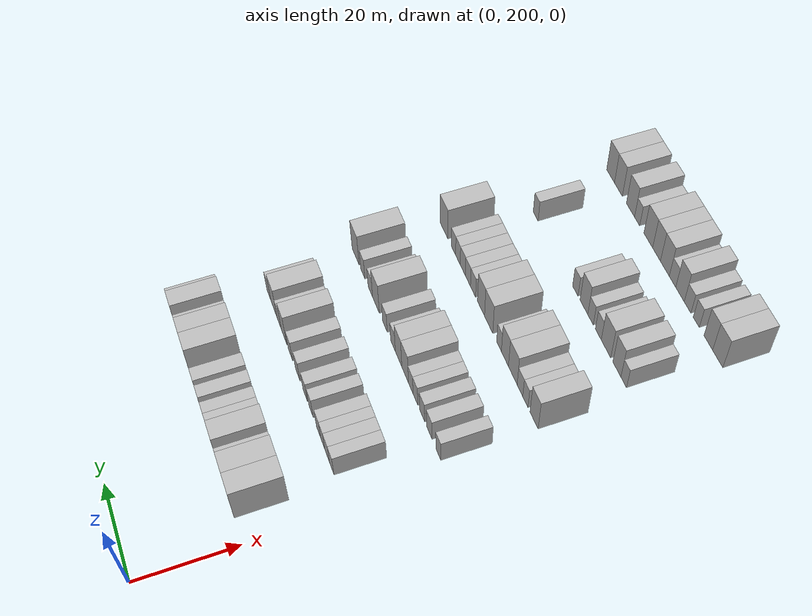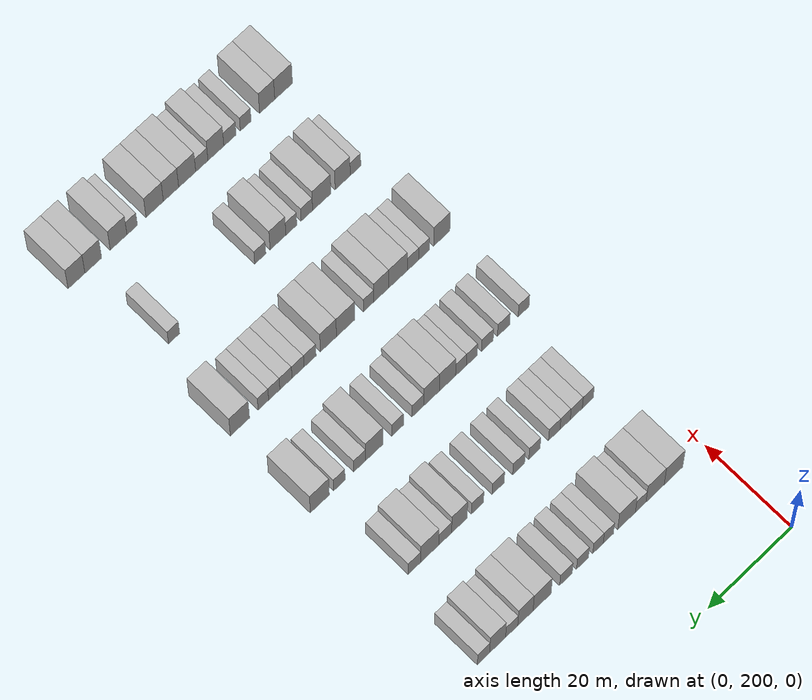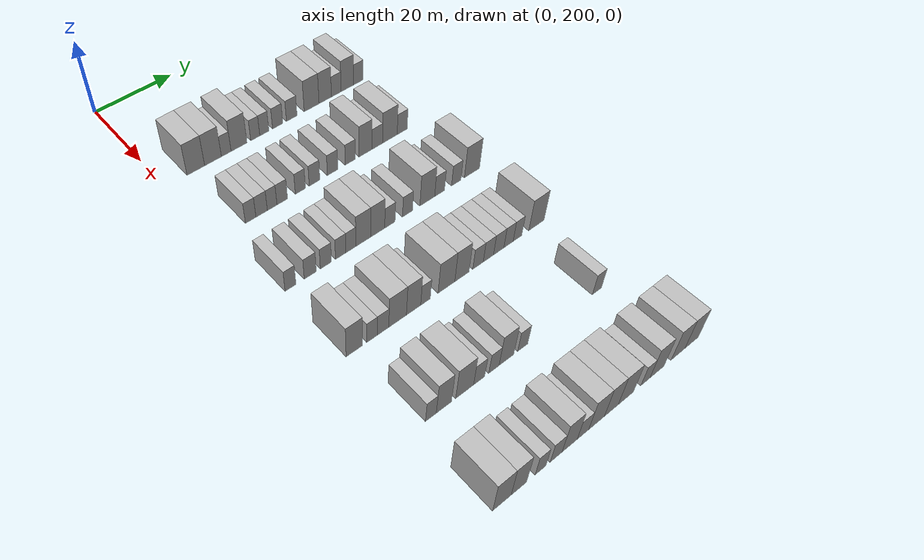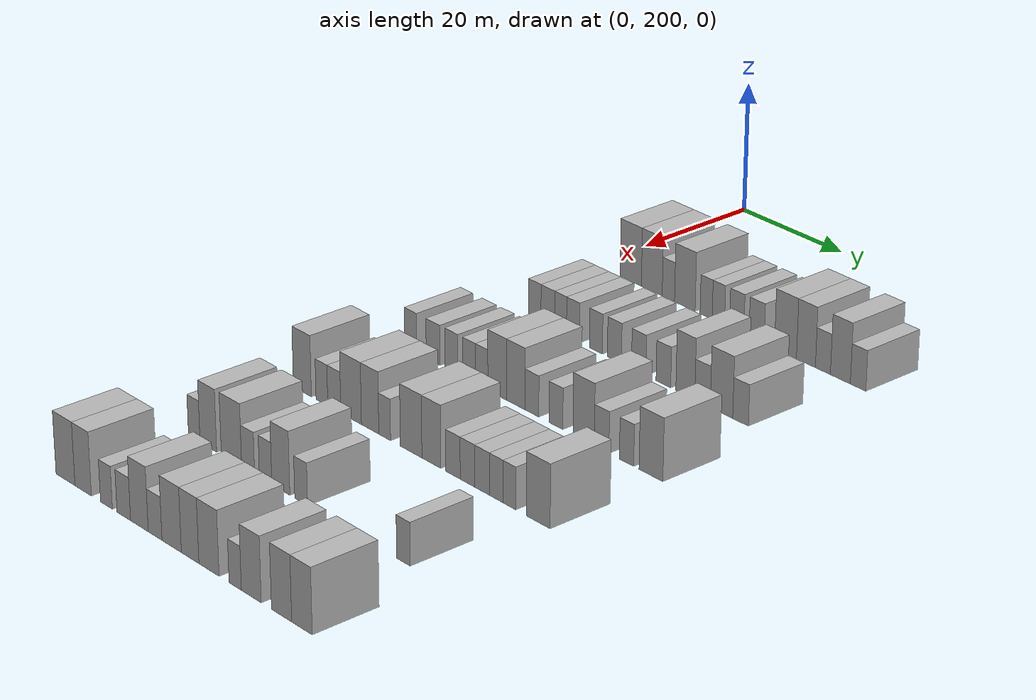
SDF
<sdf version="1.6">
 <world name="default">
  <model name="building_121">
   <static>1</static>
   <pose>25.0000 207.6409 0 0.000000 0.000000 0.000000</pose>
   <link name="link">
    <pose>0 0 4.50 0 0 0</pose>
    <collision name="collision"><geometry><box><size>10.0000 4.4596 9.0000</size></box></geometry></collision>
    <visual name="visual">
     <cast_shadows>0</cast_shadows>
     <geometry><box><size>10.0000 4.4596 9.0000</size></box></geometry>
     <material>
      <script>
       <uri>model://HANNAS_wall/materials/scripts</uri>
       <uri>model://HANNAS_wall/materials/textures</uri>
       <name>vrc/HANNAS_wall</name>
      </script>
     </material>
    </visual>
   </link>
  </model>
  <model name="building_122">
   <static>1</static>
   <pose>25.0000 212.0329 0 0.000000 0.000000 0.000000</pose>
   <link name="link">
    <pose>0 0 4.50 0 0 0</pose>
    <collision name="collision"><geometry><box><size>10.0000 4.3245 9.0000</size></box></geometry></collision>
    <visual name="visual">
     <cast_shadows>0</cast_shadows>
     <geometry><box><size>10.0000 4.3245 9.0000</size></box></geometry>
     <material>
      <script>
       <uri>model://HANNAS_wall/materials/scripts</uri>
       <uri>model://HANNAS_wall/materials/textures</uri>
       <name>vrc/HANNAS_wall</name>
      </script>
     </material>
    </visual>
   </link>
  </model>
  <model name="building_123">
   <static>1</static>
   <pose>25.0000 215.4562 0 0.000000 0.000000 0.000000</pose>
   <link name="link">
    <pose>0 0 3.00 0 0 0</pose>
    <collision name="collision"><geometry><box><size>10.0000 2.5221 6.0000</size></box></geometry></collision>
    <visual name="visual">
     <cast_shadows>0</cast_shadows>
     <geometry><box><size>10.0000 2.5221 6.0000</size></box></geometry>
     <material>
      <script>
       <uri>model://HANNAS_wall/materials/scripts</uri>
       <uri>model://HANNAS_wall/materials/textures</uri>
       <name>vrc/HANNAS_wall</name>
      </script>
     </material>
    </visual>
   </link>
  </model>
  <model name="building_124">
   <static>1</static>
   <pose>25.0000 218.8134 0 0.000000 0.000000 0.000000</pose>
   <link name="link">
    <pose>0 0 4.50 0 0 0</pose>
    <collision name="collision"><geometry><box><size>10.0000 4.1922 9.0000</size></box></geometry></collision>
    <visual name="visual">
     <cast_shadows>0</cast_shadows>
     <geometry><box><size>10.0000 4.1922 9.0000</size></box></geometry>
     <material>
      <script>
       <uri>model://HANNAS_wall/materials/scripts</uri>
       <uri>model://HANNAS_wall/materials/textures</uri>
       <name>vrc/HANNAS_wall</name>
      </script>
     </material>
    </visual>
   </link>
  </model>
  <model name="building_125">
   <static>1</static>
   <pose>25.0000 223.1245 0 0.000000 0.000000 0.000000</pose>
   <link name="link">
    <pose>0 0 3.00 0 0 0</pose>
    <collision name="collision"><geometry><box><size>10.0000 2.4300 6.0000</size></box></geometry></collision>
    <visual name="visual">
     <cast_shadows>0</cast_shadows>
     <geometry><box><size>10.0000 2.4300 6.0000</size></box></geometry>
     <material>
      <script>
       <uri>model://HANNAS_wall/materials/scripts</uri>
       <uri>model://HANNAS_wall/materials/textures</uri>
       <name>vrc/HANNAS_wall</name>
      </script>
     </material>
    </visual>
   </link>
  </model>
  <model name="building_126">
   <static>1</static>
   <pose>25.0000 225.5760 0 0.000000 0.000000 0.000000</pose>
   <link name="link">
    <pose>0 0 3.00 0 0 0</pose>
    <collision name="collision"><geometry><box><size>10.0000 2.4731 6.0000</size></box></geometry></collision>
    <visual name="visual">
     <cast_shadows>0</cast_shadows>
     <geometry><box><size>10.0000 2.4731 6.0000</size></box></geometry>
     <material>
      <script>
       <uri>model://HANNAS_wall/materials/scripts</uri>
       <uri>model://HANNAS_wall/materials/textures</uri>
       <name>vrc/HANNAS_wall</name>
      </script>
     </material>
    </visual>
   </link>
  </model>
  <model name="building_127">
   <static>1</static>
   <pose>25.0000 229.2256 0 0.000000 0.000000 0.000000</pose>
   <link name="link">
    <pose>0 0 3.00 0 0 0</pose>
    <collision name="collision"><geometry><box><size>10.0000 2.8261 6.0000</size></box></geometry></collision>
    <visual name="visual">
     <cast_shadows>0</cast_shadows>
     <geometry><box><size>10.0000 2.8261 6.0000</size></box></geometry>
     <material>
      <script>
       <uri>model://HANNAS_wall/materials/scripts</uri>
       <uri>model://HANNAS_wall/materials/textures</uri>
       <name>vrc/HANNAS_wall</name>
      </script>
     </material>
    </visual>
   </link>
  </model>
  <model name="building_128">
   <static>1</static>
   <pose>25.0000 233.1221 0 0.000000 0.000000 0.000000</pose>
   <link name="link">
    <pose>0 0 3.00 0 0 0</pose>
    <collision name="collision"><geometry><box><size>10.0000 2.9668 6.0000</size></box></geometry></collision>
    <visual name="visual">
     <cast_shadows>0</cast_shadows>
     <geometry><box><size>10.0000 2.9668 6.0000</size></box></geometry>
     <material>
      <script>
       <uri>model://HANNAS_wall/materials/scripts</uri>
       <uri>model://HANNAS_wall/materials/textures</uri>
       <name>vrc/HANNAS_wall</name>
      </script>
     </material>
    </visual>
   </link>
  </model>
  <model name="building_129">
   <static>1</static>
   <pose>25.0000 238.7229 0 0.000000 0.000000 0.000000</pose>
   <link name="link">
    <pose>0 0 4.50 0 0 0</pose>
    <collision name="collision"><geometry><box><size>10.0000 4.2348 9.0000</size></box></geometry></collision>
    <visual name="visual">
     <cast_shadows>0</cast_shadows>
     <geometry><box><size>10.0000 4.2348 9.0000</size></box></geometry>
     <material>
      <script>
       <uri>model://HANNAS_wall/materials/scripts</uri>
       <uri>model://HANNAS_wall/materials/textures</uri>
       <name>vrc/HANNAS_wall</name>
      </script>
     </material>
    </visual>
   </link>
  </model>
  <model name="building_130">
   <static>1</static>
   <pose>25.0000 242.6407 0 0.000000 0.000000 0.000000</pose>
   <link name="link">
    <pose>0 0 4.50 0 0 0</pose>
    <collision name="collision"><geometry><box><size>10.0000 3.6008 9.0000</size></box></geometry></collision>
    <visual name="visual">
     <cast_shadows>0</cast_shadows>
     <geometry><box><size>10.0000 3.6008 9.0000</size></box></geometry>
     <material>
      <script>
       <uri>model://HANNAS_wall/materials/scripts</uri>
       <uri>model://HANNAS_wall/materials/textures</uri>
       <name>vrc/HANNAS_wall</name>
      </script>
     </material>
    </visual>
   </link>
  </model>
  <model name="building_131">
   <static>1</static>
   <pose>25.0000 245.8560 0 0.000000 0.000000 0.000000</pose>
   <link name="link">
    <pose>0 0 3.00 0 0 0</pose>
    <collision name="collision"><geometry><box><size>10.0000 2.8298 6.0000</size></box></geometry></collision>
    <visual name="visual">
     <cast_shadows>0</cast_shadows>
     <geometry><box><size>10.0000 2.8298 6.0000</size></box></geometry>
     <material>
      <script>
       <uri>model://HANNAS_wall/materials/scripts</uri>
       <uri>model://HANNAS_wall/materials/textures</uri>
       <name>vrc/HANNAS_wall</name>
      </script>
     </material>
    </visual>
   </link>
  </model>
  <model name="building_132">
   <static>1</static>
   <pose>25.0000 249.1330 0 0.000000 0.000000 0.000000</pose>
   <link name="link">
    <pose>0 0 4.50 0 0 0</pose>
    <collision name="collision"><geometry><box><size>10.0000 3.7242 9.0000</size></box></geometry></collision>
    <visual name="visual">
     <cast_shadows>0</cast_shadows>
     <geometry><box><size>10.0000 3.7242 9.0000</size></box></geometry>
     <material>
      <script>
       <uri>model://HANNAS_wall/materials/scripts</uri>
       <uri>model://HANNAS_wall/materials/textures</uri>
       <name>vrc/HANNAS_wall</name>
      </script>
     </material>
    </visual>
   </link>
  </model>
  <model name="building_133">
   <static>1</static>
   <pose>25.0000 252.4253 0 0.000000 0.000000 0.000000</pose>
   <link name="link">
    <pose>0 0 3.00 0 0 0</pose>
    <collision name="collision"><geometry><box><size>10.0000 2.8605 6.0000</size></box></geometry></collision>
    <visual name="visual">
     <cast_shadows>0</cast_shadows>
     <geometry><box><size>10.0000 2.8605 6.0000</size></box></geometry>
     <material>
      <script>
       <uri>model://HANNAS_wall/materials/scripts</uri>
       <uri>model://HANNAS_wall/materials/textures</uri>
       <name>vrc/HANNAS_wall</name>
      </script>
     </material>
    </visual>
   </link>
  </model>
  <model name="building_291">
   <static>1</static>
   <pose>44.0000 208.6690 0 0.000000 0.000000 0.000000</pose>
   <link name="link">
    <pose>0 0 3.00 0 0 0</pose>
    <collision name="collision"><geometry><box><size>10.0000 2.6167 6.0000</size></box></geometry></collision>
    <visual name="visual">
     <cast_shadows>0</cast_shadows>
     <geometry><box><size>10.0000 2.6167 6.0000</size></box></geometry>
     <material>
      <script>
       <uri>model://HANNAS_wall/materials/scripts</uri>
       <uri>model://HANNAS_wall/materials/textures</uri>
       <name>vrc/HANNAS_wall</name>
      </script>
     </material>
    </visual>
   </link>
  </model>
  <model name="building_292">
   <static>1</static>
   <pose>44.0000 211.4130 0 0.000000 0.000000 0.000000</pose>
   <link name="link">
    <pose>0 0 3.00 0 0 0</pose>
    <collision name="collision"><geometry><box><size>10.0000 2.8714 6.0000</size></box></geometry></collision>
    <visual name="visual">
     <cast_shadows>0</cast_shadows>
     <geometry><box><size>10.0000 2.8714 6.0000</size></box></geometry>
     <material>
      <script>
       <uri>model://HANNAS_wall/materials/scripts</uri>
       <uri>model://HANNAS_wall/materials/textures</uri>
       <name>vrc/HANNAS_wall</name>
      </script>
     </material>
    </visual>
   </link>
  </model>
  <model name="building_293">
   <static>1</static>
   <pose>44.0000 214.0723 0 0.000000 0.000000 0.000000</pose>
   <link name="link">
    <pose>0 0 3.00 0 0 0</pose>
    <collision name="collision"><geometry><box><size>10.0000 2.4471 6.0000</size></box></geometry></collision>
    <visual name="visual">
     <cast_shadows>0</cast_shadows>
     <geometry><box><size>10.0000 2.4471 6.0000</size></box></geometry>
     <material>
      <script>
       <uri>model://HANNAS_wall/materials/scripts</uri>
       <uri>model://HANNAS_wall/materials/textures</uri>
       <name>vrc/HANNAS_wall</name>
      </script>
     </material>
    </visual>
   </link>
  </model>
  <model name="building_294">
   <static>1</static>
   <pose>44.0000 216.6543 0 0.000000 0.000000 0.000000</pose>
   <link name="link">
    <pose>0 0 3.00 0 0 0</pose>
    <collision name="collision"><geometry><box><size>10.0000 2.7169 6.0000</size></box></geometry></collision>
    <visual name="visual">
     <cast_shadows>0</cast_shadows>
     <geometry><box><size>10.0000 2.7169 6.0000</size></box></geometry>
     <material>
      <script>
       <uri>model://HANNAS_wall/materials/scripts</uri>
       <uri>model://HANNAS_wall/materials/textures</uri>
       <name>vrc/HANNAS_wall</name>
      </script>
     </material>
    </visual>
   </link>
  </model>
  <model name="building_295">
   <static>1</static>
   <pose>44.0000 221.3380 0 0.000000 0.000000 0.000000</pose>
   <link name="link">
    <pose>0 0 3.00 0 0 0</pose>
    <collision name="collision"><geometry><box><size>10.0000 2.6506 6.0000</size></box></geometry></collision>
    <visual name="visual">
     <cast_shadows>0</cast_shadows>
     <geometry><box><size>10.0000 2.6506 6.0000</size></box></geometry>
     <material>
      <script>
       <uri>model://HANNAS_wall/materials/scripts</uri>
       <uri>model://HANNAS_wall/materials/textures</uri>
       <name>vrc/HANNAS_wall</name>
      </script>
     </material>
    </visual>
   </link>
  </model>
  <model name="building_296">
   <static>1</static>
   <pose>44.0000 225.0796 0 0.000000 0.000000 0.000000</pose>
   <link name="link">
    <pose>0 0 3.00 0 0 0</pose>
    <collision name="collision"><geometry><box><size>10.0000 2.8326 6.0000</size></box></geometry></collision>
    <visual name="visual">
     <cast_shadows>0</cast_shadows>
     <geometry><box><size>10.0000 2.8326 6.0000</size></box></geometry>
     <material>
      <script>
       <uri>model://HANNAS_wall/materials/scripts</uri>
       <uri>model://HANNAS_wall/materials/textures</uri>
       <name>vrc/HANNAS_wall</name>
      </script>
     </material>
    </visual>
   </link>
  </model>
  <model name="building_297">
   <static>1</static>
   <pose>44.0000 229.9218 0 0.000000 0.000000 0.000000</pose>
   <link name="link">
    <pose>0 0 3.00 0 0 0</pose>
    <collision name="collision"><geometry><box><size>10.0000 2.8518 6.0000</size></box></geometry></collision>
    <visual name="visual">
     <cast_shadows>0</cast_shadows>
     <geometry><box><size>10.0000 2.8518 6.0000</size></box></geometry>
     <material>
      <script>
       <uri>model://HANNAS_wall/materials/scripts</uri>
       <uri>model://HANNAS_wall/materials/textures</uri>
       <name>vrc/HANNAS_wall</name>
      </script>
     </material>
    </visual>
   </link>
  </model>
  <model name="building_298">
   <static>1</static>
   <pose>44.0000 234.7778 0 0.000000 0.000000 0.000000</pose>
   <link name="link">
    <pose>0 0 3.00 0 0 0</pose>
    <collision name="collision"><geometry><box><size>10.0000 2.8600 6.0000</size></box></geometry></collision>
    <visual name="visual">
     <cast_shadows>0</cast_shadows>
     <geometry><box><size>10.0000 2.8600 6.0000</size></box></geometry>
     <material>
      <script>
       <uri>model://HANNAS_wall/materials/scripts</uri>
       <uri>model://HANNAS_wall/materials/textures</uri>
       <name>vrc/HANNAS_wall</name>
      </script>
     </material>
    </visual>
   </link>
  </model>
  <model name="building_299">
   <static>1</static>
   <pose>44.0000 239.0334 0 0.000000 0.000000 0.000000</pose>
   <link name="link">
    <pose>0 0 4.50 0 0 0</pose>
    <collision name="collision"><geometry><box><size>10.0000 3.6512 9.0000</size></box></geometry></collision>
    <visual name="visual">
     <cast_shadows>0</cast_shadows>
     <geometry><box><size>10.0000 3.6512 9.0000</size></box></geometry>
     <material>
      <script>
       <uri>model://HANNAS_wall/materials/scripts</uri>
       <uri>model://HANNAS_wall/materials/textures</uri>
       <name>vrc/HANNAS_wall</name>
      </script>
     </material>
    </visual>
   </link>
  </model>
  <model name="building_300">
   <static>1</static>
   <pose>44.0000 242.3437 0 0.000000 0.000000 0.000000</pose>
   <link name="link">
    <pose>0 0 3.00 0 0 0</pose>
    <collision name="collision"><geometry><box><size>10.0000 2.9696 6.0000</size></box></geometry></collision>
    <visual name="visual">
     <cast_shadows>0</cast_shadows>
     <geometry><box><size>10.0000 2.9696 6.0000</size></box></geometry>
     <material>
      <script>
       <uri>model://HANNAS_wall/materials/scripts</uri>
       <uri>model://HANNAS_wall/materials/textures</uri>
       <name>vrc/HANNAS_wall</name>
      </script>
     </material>
    </visual>
   </link>
  </model>
  <model name="building_301">
   <static>1</static>
   <pose>44.0000 245.9499 0 0.000000 0.000000 0.000000</pose>
   <link name="link">
    <pose>0 0 4.50 0 0 0</pose>
    <collision name="collision"><geometry><box><size>10.0000 4.2427 9.0000</size></box></geometry></collision>
    <visual name="visual">
     <cast_shadows>0</cast_shadows>
     <geometry><box><size>10.0000 4.2427 9.0000</size></box></geometry>
     <material>
      <script>
       <uri>model://HANNAS_wall/materials/scripts</uri>
       <uri>model://HANNAS_wall/materials/textures</uri>
       <name>vrc/HANNAS_wall</name>
      </script>
     </material>
    </visual>
   </link>
  </model>
  <model name="building_302">
   <static>1</static>
   <pose>44.0000 249.5386 0 0.000000 0.000000 0.000000</pose>
   <link name="link">
    <pose>0 0 3.00 0 0 0</pose>
    <collision name="collision"><geometry><box><size>10.0000 2.9348 6.0000</size></box></geometry></collision>
    <visual name="visual">
     <cast_shadows>0</cast_shadows>
     <geometry><box><size>10.0000 2.9348 6.0000</size></box></geometry>
     <material>
      <script>
       <uri>model://HANNAS_wall/materials/scripts</uri>
       <uri>model://HANNAS_wall/materials/textures</uri>
       <name>vrc/HANNAS_wall</name>
      </script>
     </material>
    </visual>
   </link>
  </model>
  <model name="building_459">
   <static>1</static>
   <pose>63.0000 204.7599 0 0.000000 0.000000 0.000000</pose>
   <link name="link">
    <pose>0 0 3.00 0 0 0</pose>
    <collision name="collision"><geometry><box><size>10.0000 2.6177 6.0000</size></box></geometry></collision>
    <visual name="visual">
     <cast_shadows>0</cast_shadows>
     <geometry><box><size>10.0000 2.6177 6.0000</size></box></geometry>
     <material>
      <script>
       <uri>model://HANNAS_wall/materials/scripts</uri>
       <uri>model://HANNAS_wall/materials/textures</uri>
       <name>vrc/HANNAS_wall</name>
      </script>
     </material>
    </visual>
   </link>
  </model>
  <model name="building_460">
   <static>1</static>
   <pose>63.0000 209.5376 0 0.000000 0.000000 0.000000</pose>
   <link name="link">
    <pose>0 0 3.00 0 0 0</pose>
    <collision name="collision"><geometry><box><size>10.0000 2.9378 6.0000</size></box></geometry></collision>
    <visual name="visual">
     <cast_shadows>0</cast_shadows>
     <geometry><box><size>10.0000 2.9378 6.0000</size></box></geometry>
     <material>
      <script>
       <uri>model://HANNAS_wall/materials/scripts</uri>
       <uri>model://HANNAS_wall/materials/textures</uri>
       <name>vrc/HANNAS_wall</name>
      </script>
     </material>
    </visual>
   </link>
  </model>
  <model name="building_461">
   <static>1</static>
   <pose>63.0000 213.3924 0 0.000000 0.000000 0.000000</pose>
   <link name="link">
    <pose>0 0 3.00 0 0 0</pose>
    <collision name="collision"><geometry><box><size>10.0000 2.7718 6.0000</size></box></geometry></collision>
    <visual name="visual">
     <cast_shadows>0</cast_shadows>
     <geometry><box><size>10.0000 2.7718 6.0000</size></box></geometry>
     <material>
      <script>
       <uri>model://HANNAS_wall/materials/scripts</uri>
       <uri>model://HANNAS_wall/materials/textures</uri>
       <name>vrc/HANNAS_wall</name>
      </script>
     </material>
    </visual>
   </link>
  </model>
  <model name="building_462">
   <static>1</static>
   <pose>63.0000 217.0921 0 0.000000 0.000000 0.000000</pose>
   <link name="link">
    <pose>0 0 3.00 0 0 0</pose>
    <collision name="collision"><geometry><box><size>10.0000 2.6277 6.0000</size></box></geometry></collision>
    <visual name="visual">
     <cast_shadows>0</cast_shadows>
     <geometry><box><size>10.0000 2.6277 6.0000</size></box></geometry>
     <material>
      <script>
       <uri>model://HANNAS_wall/materials/scripts</uri>
       <uri>model://HANNAS_wall/materials/textures</uri>
       <name>vrc/HANNAS_wall</name>
      </script>
     </material>
    </visual>
   </link>
  </model>
  <model name="building_463">
   <static>1</static>
   <pose>63.0000 219.6779 0 0.000000 0.000000 0.000000</pose>
   <link name="link">
    <pose>0 0 3.00 0 0 0</pose>
    <collision name="collision"><geometry><box><size>10.0000 2.5439 6.0000</size></box></geometry></collision>
    <visual name="visual">
     <cast_shadows>0</cast_shadows>
     <geometry><box><size>10.0000 2.5439 6.0000</size></box></geometry>
     <material>
      <script>
       <uri>model://HANNAS_wall/materials/scripts</uri>
       <uri>model://HANNAS_wall/materials/textures</uri>
       <name>vrc/HANNAS_wall</name>
      </script>
     </material>
    </visual>
   </link>
  </model>
  <model name="building_464">
   <static>1</static>
   <pose>63.0000 222.8643 0 0.000000 0.000000 0.000000</pose>
   <link name="link">
    <pose>0 0 4.50 0 0 0</pose>
    <collision name="collision"><geometry><box><size>10.0000 3.8289 9.0000</size></box></geometry></collision>
    <visual name="visual">
     <cast_shadows>0</cast_shadows>
     <geometry><box><size>10.0000 3.8289 9.0000</size></box></geometry>
     <material>
      <script>
       <uri>model://HANNAS_wall/materials/scripts</uri>
       <uri>model://HANNAS_wall/materials/textures</uri>
       <name>vrc/HANNAS_wall</name>
      </script>
     </material>
    </visual>
   </link>
  </model>
  <model name="building_465">
   <static>1</static>
   <pose>63.0000 226.6284 0 0.000000 0.000000 0.000000</pose>
   <link name="link">
    <pose>0 0 4.50 0 0 0</pose>
    <collision name="collision"><geometry><box><size>10.0000 3.6992 9.0000</size></box></geometry></collision>
    <visual name="visual">
     <cast_shadows>0</cast_shadows>
     <geometry><box><size>10.0000 3.6992 9.0000</size></box></geometry>
     <material>
      <script>
       <uri>model://HANNAS_wall/materials/scripts</uri>
       <uri>model://HANNAS_wall/materials/textures</uri>
       <name>vrc/HANNAS_wall</name>
      </script>
     </material>
    </visual>
   </link>
  </model>
  <model name="building_466">
   <static>1</static>
   <pose>63.0000 229.8604 0 0.000000 0.000000 0.000000</pose>
   <link name="link">
    <pose>0 0 3.00 0 0 0</pose>
    <collision name="collision"><geometry><box><size>10.0000 2.7649 6.0000</size></box></geometry></collision>
    <visual name="visual">
     <cast_shadows>0</cast_shadows>
     <geometry><box><size>10.0000 2.7649 6.0000</size></box></geometry>
     <material>
      <script>
       <uri>model://HANNAS_wall/materials/scripts</uri>
       <uri>model://HANNAS_wall/materials/textures</uri>
       <name>vrc/HANNAS_wall</name>
      </script>
     </material>
    </visual>
   </link>
  </model>
  <model name="building_467">
   <static>1</static>
   <pose>63.0000 234.6172 0 0.000000 0.000000 0.000000</pose>
   <link name="link">
    <pose>0 0 3.00 0 0 0</pose>
    <collision name="collision"><geometry><box><size>10.0000 2.7488 6.0000</size></box></geometry></collision>
    <visual name="visual">
     <cast_shadows>0</cast_shadows>
     <geometry><box><size>10.0000 2.7488 6.0000</size></box></geometry>
     <material>
      <script>
       <uri>model://HANNAS_wall/materials/scripts</uri>
       <uri>model://HANNAS_wall/materials/textures</uri>
       <name>vrc/HANNAS_wall</name>
      </script>
     </material>
    </visual>
   </link>
  </model>
  <model name="building_468">
   <static>1</static>
   <pose>63.0000 240.0532 0 0.000000 0.000000 0.000000</pose>
   <link name="link">
    <pose>0 0 4.50 0 0 0</pose>
    <collision name="collision"><geometry><box><size>10.0000 4.1232 9.0000</size></box></geometry></collision>
    <visual name="visual">
     <cast_shadows>0</cast_shadows>
     <geometry><box><size>10.0000 4.1232 9.0000</size></box></geometry>
     <material>
      <script>
       <uri>model://HANNAS_wall/materials/scripts</uri>
       <uri>model://HANNAS_wall/materials/textures</uri>
       <name>vrc/HANNAS_wall</name>
      </script>
     </material>
    </visual>
   </link>
  </model>
  <model name="building_469">
   <static>1</static>
   <pose>63.0000 243.5120 0 0.000000 0.000000 0.000000</pose>
   <link name="link">
    <pose>0 0 3.00 0 0 0</pose>
    <collision name="collision"><geometry><box><size>10.0000 2.7944 6.0000</size></box></geometry></collision>
    <visual name="visual">
     <cast_shadows>0</cast_shadows>
     <geometry><box><size>10.0000 2.7944 6.0000</size></box></geometry>
     <material>
      <script>
       <uri>model://HANNAS_wall/materials/scripts</uri>
       <uri>model://HANNAS_wall/materials/textures</uri>
       <name>vrc/HANNAS_wall</name>
      </script>
     </material>
    </visual>
   </link>
  </model>
  <model name="building_470">
   <static>1</static>
   <pose>63.0000 248.2575 0 0.000000 0.000000 0.000000</pose>
   <link name="link">
    <pose>0 0 3.00 0 0 0</pose>
    <collision name="collision"><geometry><box><size>10.0000 2.6966 6.0000</size></box></geometry></collision>
    <visual name="visual">
     <cast_shadows>0</cast_shadows>
     <geometry><box><size>10.0000 2.6966 6.0000</size></box></geometry>
     <material>
      <script>
       <uri>model://HANNAS_wall/materials/scripts</uri>
       <uri>model://HANNAS_wall/materials/textures</uri>
       <name>vrc/HANNAS_wall</name>
      </script>
     </material>
    </visual>
   </link>
  </model>
  <model name="building_471">
   <static>1</static>
   <pose>63.0000 252.8233 0 0.000000 0.000000 0.000000</pose>
   <link name="link">
    <pose>0 0 4.50 0 0 0</pose>
    <collision name="collision"><geometry><box><size>10.0000 4.4351 9.0000</size></box></geometry></collision>
    <visual name="visual">
     <cast_shadows>0</cast_shadows>
     <geometry><box><size>10.0000 4.4351 9.0000</size></box></geometry>
     <material>
      <script>
       <uri>model://HANNAS_wall/materials/scripts</uri>
       <uri>model://HANNAS_wall/materials/textures</uri>
       <name>vrc/HANNAS_wall</name>
      </script>
     </material>
    </visual>
   </link>
  </model>
  <model name="building_640">
   <static>1</static>
   <pose>82.0000 205.2505 0 0.000000 0.000000 0.000000</pose>
   <link name="link">
    <pose>0 0 4.50 0 0 0</pose>
    <collision name="collision"><geometry><box><size>10.0000 3.8724 9.0000</size></box></geometry></collision>
    <visual name="visual">
     <cast_shadows>0</cast_shadows>
     <geometry><box><size>10.0000 3.8724 9.0000</size></box></geometry>
     <material>
      <script>
       <uri>model://HANNAS_wall/materials/scripts</uri>
       <uri>model://HANNAS_wall/materials/textures</uri>
       <name>vrc/HANNAS_wall</name>
      </script>
     </material>
    </visual>
   </link>
  </model>
  <model name="building_641">
   <static>1</static>
   <pose>82.0000 209.4470 0 0.000000 0.000000 0.000000</pose>
   <link name="link">
    <pose>0 0 3.00 0 0 0</pose>
    <collision name="collision"><geometry><box><size>10.0000 2.5204 6.0000</size></box></geometry></collision>
    <visual name="visual">
     <cast_shadows>0</cast_shadows>
     <geometry><box><size>10.0000 2.5204 6.0000</size></box></geometry>
     <material>
      <script>
       <uri>model://HANNAS_wall/materials/scripts</uri>
       <uri>model://HANNAS_wall/materials/textures</uri>
       <name>vrc/HANNAS_wall</name>
      </script>
     </material>
    </visual>
   </link>
  </model>
  <model name="building_642">
   <static>1</static>
   <pose>82.0000 212.0939 0 0.000000 0.000000 0.000000</pose>
   <link name="link">
    <pose>0 0 3.00 0 0 0</pose>
    <collision name="collision"><geometry><box><size>10.0000 2.7735 6.0000</size></box></geometry></collision>
    <visual name="visual">
     <cast_shadows>0</cast_shadows>
     <geometry><box><size>10.0000 2.7735 6.0000</size></box></geometry>
     <material>
      <script>
       <uri>model://HANNAS_wall/materials/scripts</uri>
       <uri>model://HANNAS_wall/materials/textures</uri>
       <name>vrc/HANNAS_wall</name>
      </script>
     </material>
    </visual>
   </link>
  </model>
  <model name="building_643">
   <static>1</static>
   <pose>82.0000 215.6544 0 0.000000 0.000000 0.000000</pose>
   <link name="link">
    <pose>0 0 4.50 0 0 0</pose>
    <collision name="collision"><geometry><box><size>10.0000 4.3475 9.0000</size></box></geometry></collision>
    <visual name="visual">
     <cast_shadows>0</cast_shadows>
     <geometry><box><size>10.0000 4.3475 9.0000</size></box></geometry>
     <material>
      <script>
       <uri>model://HANNAS_wall/materials/scripts</uri>
       <uri>model://HANNAS_wall/materials/textures</uri>
       <name>vrc/HANNAS_wall</name>
      </script>
     </material>
    </visual>
   </link>
  </model>
  <model name="building_644">
   <static>1</static>
   <pose>82.0000 219.6305 0 0.000000 0.000000 0.000000</pose>
   <link name="link">
    <pose>0 0 4.50 0 0 0</pose>
    <collision name="collision"><geometry><box><size>10.0000 3.6048 9.0000</size></box></geometry></collision>
    <visual name="visual">
     <cast_shadows>0</cast_shadows>
     <geometry><box><size>10.0000 3.6048 9.0000</size></box></geometry>
     <material>
      <script>
       <uri>model://HANNAS_wall/materials/scripts</uri>
       <uri>model://HANNAS_wall/materials/textures</uri>
       <name>vrc/HANNAS_wall</name>
      </script>
     </material>
    </visual>
   </link>
  </model>
  <model name="building_645">
   <static>1</static>
   <pose>82.0000 222.6522 0 0.000000 0.000000 0.000000</pose>
   <link name="link">
    <pose>0 0 3.00 0 0 0</pose>
    <collision name="collision"><geometry><box><size>10.0000 2.4386 6.0000</size></box></geometry></collision>
    <visual name="visual">
     <cast_shadows>0</cast_shadows>
     <geometry><box><size>10.0000 2.4386 6.0000</size></box></geometry>
     <material>
      <script>
       <uri>model://HANNAS_wall/materials/scripts</uri>
       <uri>model://HANNAS_wall/materials/textures</uri>
       <name>vrc/HANNAS_wall</name>
      </script>
     </material>
    </visual>
   </link>
  </model>
  <model name="building_646">
   <static>1</static>
   <pose>82.0000 228.0543 0 0.000000 0.000000 0.000000</pose>
   <link name="link">
    <pose>0 0 4.50 0 0 0</pose>
    <collision name="collision"><geometry><box><size>10.0000 4.3655 9.0000</size></box></geometry></collision>
    <visual name="visual">
     <cast_shadows>0</cast_shadows>
     <geometry><box><size>10.0000 4.3655 9.0000</size></box></geometry>
     <material>
      <script>
       <uri>model://HANNAS_wall/materials/scripts</uri>
       <uri>model://HANNAS_wall/materials/textures</uri>
       <name>vrc/HANNAS_wall</name>
      </script>
     </material>
    </visual>
   </link>
  </model>
  <model name="building_647">
   <static>1</static>
   <pose>82.0000 232.1322 0 0.000000 0.000000 0.000000</pose>
   <link name="link">
    <pose>0 0 4.50 0 0 0</pose>
    <collision name="collision"><geometry><box><size>10.0000 3.7903 9.0000</size></box></geometry></collision>
    <visual name="visual">
     <cast_shadows>0</cast_shadows>
     <geometry><box><size>10.0000 3.7903 9.0000</size></box></geometry>
     <material>
      <script>
       <uri>model://HANNAS_wall/materials/scripts</uri>
       <uri>model://HANNAS_wall/materials/textures</uri>
       <name>vrc/HANNAS_wall</name>
      </script>
     </material>
    </visual>
   </link>
  </model>
  <model name="building_648">
   <static>1</static>
   <pose>82.0000 236.4428 0 0.000000 0.000000 0.000000</pose>
   <link name="link">
    <pose>0 0 3.00 0 0 0</pose>
    <collision name="collision"><geometry><box><size>10.0000 2.8308 6.0000</size></box></geometry></collision>
    <visual name="visual">
     <cast_shadows>0</cast_shadows>
     <geometry><box><size>10.0000 2.8308 6.0000</size></box></geometry>
     <material>
      <script>
       <uri>model://HANNAS_wall/materials/scripts</uri>
       <uri>model://HANNAS_wall/materials/textures</uri>
       <name>vrc/HANNAS_wall</name>
      </script>
     </material>
    </visual>
   </link>
  </model>
  <model name="building_649">
   <static>1</static>
   <pose>82.0000 239.2727 0 0.000000 0.000000 0.000000</pose>
   <link name="link">
    <pose>0 0 3.00 0 0 0</pose>
    <collision name="collision"><geometry><box><size>10.0000 2.8291 6.0000</size></box></geometry></collision>
    <visual name="visual">
     <cast_shadows>0</cast_shadows>
     <geometry><box><size>10.0000 2.8291 6.0000</size></box></geometry>
     <material>
      <script>
       <uri>model://HANNAS_wall/materials/scripts</uri>
       <uri>model://HANNAS_wall/materials/textures</uri>
       <name>vrc/HANNAS_wall</name>
      </script>
     </material>
    </visual>
   </link>
  </model>
  <model name="building_650">
   <static>1</static>
   <pose>82.0000 242.1161 0 0.000000 0.000000 0.000000</pose>
   <link name="link">
    <pose>0 0 3.00 0 0 0</pose>
    <collision name="collision"><geometry><box><size>10.0000 2.8576 6.0000</size></box></geometry></collision>
    <visual name="visual">
     <cast_shadows>0</cast_shadows>
     <geometry><box><size>10.0000 2.8576 6.0000</size></box></geometry>
     <material>
      <script>
       <uri>model://HANNAS_wall/materials/scripts</uri>
       <uri>model://HANNAS_wall/materials/textures</uri>
       <name>vrc/HANNAS_wall</name>
      </script>
     </material>
    </visual>
   </link>
  </model>
  <model name="building_651">
   <static>1</static>
   <pose>82.0000 244.8535 0 0.000000 0.000000 0.000000</pose>
   <link name="link">
    <pose>0 0 3.00 0 0 0</pose>
    <collision name="collision"><geometry><box><size>10.0000 2.6172 6.0000</size></box></geometry></collision>
    <visual name="visual">
     <cast_shadows>0</cast_shadows>
     <geometry><box><size>10.0000 2.6172 6.0000</size></box></geometry>
     <material>
      <script>
       <uri>model://HANNAS_wall/materials/scripts</uri>
       <uri>model://HANNAS_wall/materials/textures</uri>
       <name>vrc/HANNAS_wall</name>
      </script>
     </material>
    </visual>
   </link>
  </model>
  <model name="building_652">
   <static>1</static>
   <pose>82.0000 247.3915 0 0.000000 0.000000 0.000000</pose>
   <link name="link">
    <pose>0 0 3.00 0 0 0</pose>
    <collision name="collision"><geometry><box><size>10.0000 2.4589 6.0000</size></box></geometry></collision>
    <visual name="visual">
     <cast_shadows>0</cast_shadows>
     <geometry><box><size>10.0000 2.4589 6.0000</size></box></geometry>
     <material>
      <script>
       <uri>model://HANNAS_wall/materials/scripts</uri>
       <uri>model://HANNAS_wall/materials/textures</uri>
       <name>vrc/HANNAS_wall</name>
      </script>
     </material>
    </visual>
   </link>
  </model>
  <model name="building_653">
   <static>1</static>
   <pose>82.0000 252.8490 0 0.000000 0.000000 0.000000</pose>
   <link name="link">
    <pose>0 0 4.50 0 0 0</pose>
    <collision name="collision"><geometry><box><size>10.0000 4.4561 9.0000</size></box></geometry></collision>
    <visual name="visual">
     <cast_shadows>0</cast_shadows>
     <geometry><box><size>10.0000 4.4561 9.0000</size></box></geometry>
     <material>
      <script>
       <uri>model://HANNAS_wall/materials/scripts</uri>
       <uri>model://HANNAS_wall/materials/textures</uri>
       <name>vrc/HANNAS_wall</name>
      </script>
     </material>
    </visual>
   </link>
  </model>
  <model name="building_819">
   <static>1</static>
   <pose>101.0000 206.9929 0 0.000000 0.000000 0.000000</pose>
   <link name="link">
    <pose>0 0 3.00 0 0 0</pose>
    <collision name="collision"><geometry><box><size>10.0000 2.5161 6.0000</size></box></geometry></collision>
    <visual name="visual">
     <cast_shadows>0</cast_shadows>
     <geometry><box><size>10.0000 2.5161 6.0000</size></box></geometry>
     <material>
      <script>
       <uri>model://HANNAS_wall/materials/scripts</uri>
       <uri>model://HANNAS_wall/materials/textures</uri>
       <name>vrc/HANNAS_wall</name>
      </script>
     </material>
    </visual>
   </link>
  </model>
  <model name="building_820">
   <static>1</static>
   <pose>101.0000 210.0564 0 0.000000 0.000000 0.000000</pose>
   <link name="link">
    <pose>0 0 4.50 0 0 0</pose>
    <collision name="collision"><geometry><box><size>10.0000 3.6108 9.0000</size></box></geometry></collision>
    <visual name="visual">
     <cast_shadows>0</cast_shadows>
     <geometry><box><size>10.0000 3.6108 9.0000</size></box></geometry>
     <material>
      <script>
       <uri>model://HANNAS_wall/materials/scripts</uri>
       <uri>model://HANNAS_wall/materials/textures</uri>
       <name>vrc/HANNAS_wall</name>
      </script>
     </material>
    </visual>
   </link>
  </model>
  <model name="building_821">
   <static>1</static>
   <pose>101.0000 215.0351 0 0.000000 0.000000 0.000000</pose>
   <link name="link">
    <pose>0 0 4.50 0 0 0</pose>
    <collision name="collision"><geometry><box><size>10.0000 4.3467 9.0000</size></box></geometry></collision>
    <visual name="visual">
     <cast_shadows>0</cast_shadows>
     <geometry><box><size>10.0000 4.3467 9.0000</size></box></geometry>
     <material>
      <script>
       <uri>model://HANNAS_wall/materials/scripts</uri>
       <uri>model://HANNAS_wall/materials/textures</uri>
       <name>vrc/HANNAS_wall</name>
      </script>
     </material>
    </visual>
   </link>
  </model>
  <model name="building_822">
   <static>1</static>
   <pose>101.0000 218.5799 0 0.000000 0.000000 0.000000</pose>
   <link name="link">
    <pose>0 0 3.00 0 0 0</pose>
    <collision name="collision"><geometry><box><size>10.0000 2.7428 6.0000</size></box></geometry></collision>
    <visual name="visual">
     <cast_shadows>0</cast_shadows>
     <geometry><box><size>10.0000 2.7428 6.0000</size></box></geometry>
     <material>
      <script>
       <uri>model://HANNAS_wall/materials/scripts</uri>
       <uri>model://HANNAS_wall/materials/textures</uri>
       <name>vrc/HANNAS_wall</name>
      </script>
     </material>
    </visual>
   </link>
  </model>
  <model name="building_823">
   <static>1</static>
   <pose>101.0000 222.2466 0 0.000000 0.000000 0.000000</pose>
   <link name="link">
    <pose>0 0 3.00 0 0 0</pose>
    <collision name="collision"><geometry><box><size>10.0000 2.5906 6.0000</size></box></geometry></collision>
    <visual name="visual">
     <cast_shadows>0</cast_shadows>
     <geometry><box><size>10.0000 2.5906 6.0000</size></box></geometry>
     <material>
      <script>
       <uri>model://HANNAS_wall/materials/scripts</uri>
       <uri>model://HANNAS_wall/materials/textures</uri>
       <name>vrc/HANNAS_wall</name>
      </script>
     </material>
    </visual>
   </link>
  </model>
  <model name="building_824">
   <static>1</static>
   <pose>101.0000 225.4107 0 0.000000 0.000000 0.000000</pose>
   <link name="link">
    <pose>0 0 4.50 0 0 0</pose>
    <collision name="collision"><geometry><box><size>10.0000 3.7377 9.0000</size></box></geometry></collision>
    <visual name="visual">
     <cast_shadows>0</cast_shadows>
     <geometry><box><size>10.0000 3.7377 9.0000</size></box></geometry>
     <material>
      <script>
       <uri>model://HANNAS_wall/materials/scripts</uri>
       <uri>model://HANNAS_wall/materials/textures</uri>
       <name>vrc/HANNAS_wall</name>
      </script>
     </material>
    </visual>
   </link>
  </model>
  <model name="building_825">
   <static>1</static>
   <pose>101.0000 229.5931 0 0.000000 0.000000 0.000000</pose>
   <link name="link">
    <pose>0 0 3.00 0 0 0</pose>
    <collision name="collision"><geometry><box><size>10.0000 2.6272 6.0000</size></box></geometry></collision>
    <visual name="visual">
     <cast_shadows>0</cast_shadows>
     <geometry><box><size>10.0000 2.6272 6.0000</size></box></geometry>
     <material>
      <script>
       <uri>model://HANNAS_wall/materials/scripts</uri>
       <uri>model://HANNAS_wall/materials/textures</uri>
       <name>vrc/HANNAS_wall</name>
      </script>
     </material>
    </visual>
   </link>
  </model>
  <model name="building_826">
   <static>1</static>
   <pose>101.0000 249.8136 0 0.000000 0.000000 0.000000</pose>
   <link name="link">
    <pose>0 0 3.00 0 0 0</pose>
    <collision name="collision"><geometry><box><size>10.0000 2.6046 6.0000</size></box></geometry></collision>
    <visual name="visual">
     <cast_shadows>0</cast_shadows>
     <geometry><box><size>10.0000 2.6046 6.0000</size></box></geometry>
     <material>
      <script>
       <uri>model://HANNAS_wall/materials/scripts</uri>
       <uri>model://HANNAS_wall/materials/textures</uri>
       <name>vrc/HANNAS_wall</name>
      </script>
     </material>
    </visual>
   </link>
  </model>
  <model name="building_983">
   <static>1</static>
   <pose>120.0000 205.5037 0 0.000000 0.000000 0.000000</pose>
   <link name="link">
    <pose>0 0 4.50 0 0 0</pose>
    <collision name="collision"><geometry><box><size>10.0000 4.2291 9.0000</size></box></geometry></collision>
    <visual name="visual">
     <cast_shadows>0</cast_shadows>
     <geometry><box><size>10.0000 4.2291 9.0000</size></box></geometry>
     <material>
      <script>
       <uri>model://HANNAS_wall/materials/scripts</uri>
       <uri>model://HANNAS_wall/materials/textures</uri>
       <name>vrc/HANNAS_wall</name>
      </script>
     </material>
    </visual>
   </link>
  </model>
  <model name="building_984">
   <static>1</static>
   <pose>120.0000 209.4265 0 0.000000 0.000000 0.000000</pose>
   <link name="link">
    <pose>0 0 4.50 0 0 0</pose>
    <collision name="collision"><geometry><box><size>10.0000 3.6166 9.0000</size></box></geometry></collision>
    <visual name="visual">
     <cast_shadows>0</cast_shadows>
     <geometry><box><size>10.0000 3.6166 9.0000</size></box></geometry>
     <material>
      <script>
       <uri>model://HANNAS_wall/materials/scripts</uri>
       <uri>model://HANNAS_wall/materials/textures</uri>
       <name>vrc/HANNAS_wall</name>
      </script>
     </material>
    </visual>
   </link>
  </model>
  <model name="building_985">
   <static>1</static>
   <pose>120.0000 214.5255 0 0.000000 0.000000 0.000000</pose>
   <link name="link">
    <pose>0 0 3.00 0 0 0</pose>
    <collision name="collision"><geometry><box><size>10.0000 2.5815 6.0000</size></box></geometry></collision>
    <visual name="visual">
     <cast_shadows>0</cast_shadows>
     <geometry><box><size>10.0000 2.5815 6.0000</size></box></geometry>
     <material>
      <script>
       <uri>model://HANNAS_wall/materials/scripts</uri>
       <uri>model://HANNAS_wall/materials/textures</uri>
       <name>vrc/HANNAS_wall</name>
      </script>
     </material>
    </visual>
   </link>
  </model>
  <model name="building_986">
   <static>1</static>
   <pose>120.0000 218.2753 0 0.000000 0.000000 0.000000</pose>
   <link name="link">
    <pose>0 0 3.00 0 0 0</pose>
    <collision name="collision"><geometry><box><size>10.0000 2.9180 6.0000</size></box></geometry></collision>
    <visual name="visual">
     <cast_shadows>0</cast_shadows>
     <geometry><box><size>10.0000 2.9180 6.0000</size></box></geometry>
     <material>
      <script>
       <uri>model://HANNAS_wall/materials/scripts</uri>
       <uri>model://HANNAS_wall/materials/textures</uri>
       <name>vrc/HANNAS_wall</name>
      </script>
     </material>
    </visual>
   </link>
  </model>
  <model name="building_987">
   <static>1</static>
   <pose>120.0000 221.6131 0 0.000000 0.000000 0.000000</pose>
   <link name="link">
    <pose>0 0 4.50 0 0 0</pose>
    <collision name="collision"><geometry><box><size>10.0000 3.7575 9.0000</size></box></geometry></collision>
    <visual name="visual">
     <cast_shadows>0</cast_shadows>
     <geometry><box><size>10.0000 3.7575 9.0000</size></box></geometry>
     <material>
      <script>
       <uri>model://HANNAS_wall/materials/scripts</uri>
       <uri>model://HANNAS_wall/materials/textures</uri>
       <name>vrc/HANNAS_wall</name>
      </script>
     </material>
    </visual>
   </link>
  </model>
  <model name="building_988">
   <static>1</static>
   <pose>120.0000 224.9329 0 0.000000 0.000000 0.000000</pose>
   <link name="link">
    <pose>0 0 3.00 0 0 0</pose>
    <collision name="collision"><geometry><box><size>10.0000 2.8822 6.0000</size></box></geometry></collision>
    <visual name="visual">
     <cast_shadows>0</cast_shadows>
     <geometry><box><size>10.0000 2.8822 6.0000</size></box></geometry>
     <material>
      <script>
       <uri>model://HANNAS_wall/materials/scripts</uri>
       <uri>model://HANNAS_wall/materials/textures</uri>
       <name>vrc/HANNAS_wall</name>
      </script>
     </material>
    </visual>
   </link>
  </model>
  <model name="building_989">
   <static>1</static>
   <pose>120.0000 228.3908 0 0.000000 0.000000 0.000000</pose>
   <link name="link">
    <pose>0 0 4.50 0 0 0</pose>
    <collision name="collision"><geometry><box><size>10.0000 4.0335 9.0000</size></box></geometry></collision>
    <visual name="visual">
     <cast_shadows>0</cast_shadows>
     <geometry><box><size>10.0000 4.0335 9.0000</size></box></geometry>
     <material>
      <script>
       <uri>model://HANNAS_wall/materials/scripts</uri>
       <uri>model://HANNAS_wall/materials/textures</uri>
       <name>vrc/HANNAS_wall</name>
      </script>
     </material>
    </visual>
   </link>
  </model>
  <model name="building_990">
   <static>1</static>
   <pose>120.0000 232.2090 0 0.000000 0.000000 0.000000</pose>
   <link name="link">
    <pose>0 0 4.50 0 0 0</pose>
    <collision name="collision"><geometry><box><size>10.0000 3.6029 9.0000</size></box></geometry></collision>
    <visual name="visual">
     <cast_shadows>0</cast_shadows>
     <geometry><box><size>10.0000 3.6029 9.0000</size></box></geometry>
     <material>
      <script>
       <uri>model://HANNAS_wall/materials/scripts</uri>
       <uri>model://HANNAS_wall/materials/textures</uri>
       <name>vrc/HANNAS_wall</name>
      </script>
     </material>
    </visual>
   </link>
  </model>
  <model name="building_991">
   <static>1</static>
   <pose>120.0000 236.0574 0 0.000000 0.000000 0.000000</pose>
   <link name="link">
    <pose>0 0 4.50 0 0 0</pose>
    <collision name="collision"><geometry><box><size>10.0000 4.0939 9.0000</size></box></geometry></collision>
    <visual name="visual">
     <cast_shadows>0</cast_shadows>
     <geometry><box><size>10.0000 4.0939 9.0000</size></box></geometry>
     <material>
      <script>
       <uri>model://HANNAS_wall/materials/scripts</uri>
       <uri>model://HANNAS_wall/materials/textures</uri>
       <name>vrc/HANNAS_wall</name>
      </script>
     </material>
    </visual>
   </link>
  </model>
  <model name="building_992">
   <static>1</static>
   <pose>120.0000 241.3366 0 0.000000 0.000000 0.000000</pose>
   <link name="link">
    <pose>0 0 3.00 0 0 0</pose>
    <collision name="collision"><geometry><box><size>10.0000 2.4645 6.0000</size></box></geometry></collision>
    <visual name="visual">
     <cast_shadows>0</cast_shadows>
     <geometry><box><size>10.0000 2.4645 6.0000</size></box></geometry>
     <material>
      <script>
       <uri>model://HANNAS_wall/materials/scripts</uri>
       <uri>model://HANNAS_wall/materials/textures</uri>
       <name>vrc/HANNAS_wall</name>
      </script>
     </material>
    </visual>
   </link>
  </model>
  <model name="building_993">
   <static>1</static>
   <pose>120.0000 244.5272 0 0.000000 0.000000 0.000000</pose>
   <link name="link">
    <pose>0 0 4.50 0 0 0</pose>
    <collision name="collision"><geometry><box><size>10.0000 3.9167 9.0000</size></box></geometry></collision>
    <visual name="visual">
     <cast_shadows>0</cast_shadows>
     <geometry><box><size>10.0000 3.9167 9.0000</size></box></geometry>
     <material>
      <script>
       <uri>model://HANNAS_wall/materials/scripts</uri>
       <uri>model://HANNAS_wall/materials/textures</uri>
       <name>vrc/HANNAS_wall</name>
      </script>
     </material>
    </visual>
   </link>
  </model>
  <model name="building_994">
   <static>1</static>
   <pose>120.0000 250.4387 0 0.000000 0.000000 0.000000</pose>
   <link name="link">
    <pose>0 0 4.50 0 0 0</pose>
    <collision name="collision"><geometry><box><size>10.0000 3.9063 9.0000</size></box></geometry></collision>
    <visual name="visual">
     <cast_shadows>0</cast_shadows>
     <geometry><box><size>10.0000 3.9063 9.0000</size></box></geometry>
     <material>
      <script>
       <uri>model://HANNAS_wall/materials/scripts</uri>
       <uri>model://HANNAS_wall/materials/textures</uri>
       <name>vrc/HANNAS_wall</name>
      </script>
     </material>
    </visual>
   </link>
  </model>
  <model name="building_995">
   <static>1</static>
   <pose>120.0000 254.3533 0 0.000000 0.000000 0.000000</pose>
   <link name="link">
    <pose>0 0 4.50 0 0 0</pose>
    <collision name="collision"><geometry><box><size>10.0000 3.9228 9.0000</size></box></geometry></collision>
    <visual name="visual">
     <cast_shadows>0</cast_shadows>
     <geometry><box><size>10.0000 3.9228 9.0000</size></box></geometry>
     <material>
      <script>
       <uri>model://HANNAS_wall/materials/scripts</uri>
       <uri>model://HANNAS_wall/materials/textures</uri>
       <name>vrc/HANNAS_wall</name>
      </script>
     </material>
    </visual>
   </link>
  </model>
 </world>
</sdf>
